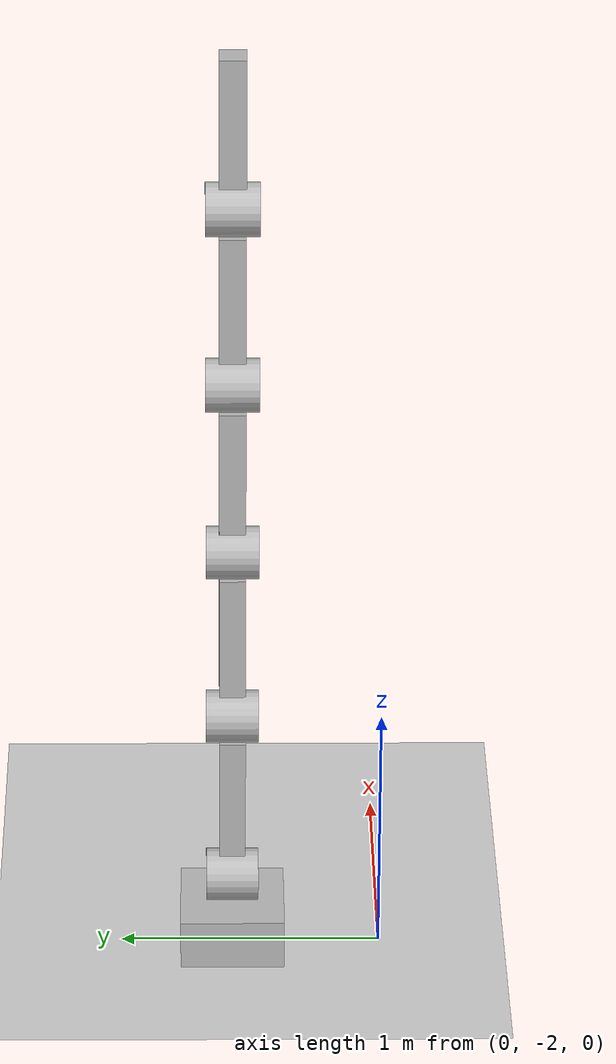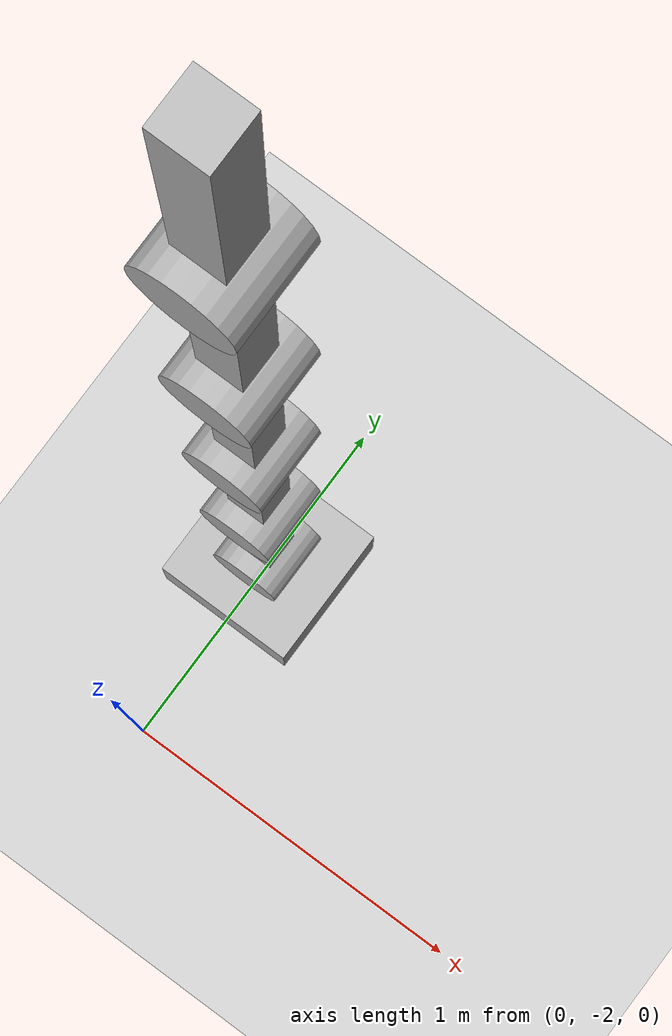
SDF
<sdf version="1.4">
 <world name="default">
  <light name="sun" type="directional">
   <pose>0 0 10 0 -0 0</pose>
   <diffuse>0.8 0.8 0.8 1</diffuse>
   <specular>0.2 0.2 0.2 1</specular>
   <attenuation>
    <range>1000</range>
    <constant>0.9</constant>
    <linear>0.01</linear>
    <quadratic>0.001</quadratic>
   </attenuation>
   <direction>-0.5 0.1 -0.9</direction>
  </light>
  <model name="ground_plane">
   <static>1</static>
   <link name="link">
    <collision name="collision">
     <geometry><plane><normal>0 0 1</normal><size>100 100</size></plane></geometry>
     <surface><friction><ode><mu>100</mu><mu2>50</mu2></ode></friction></surface>
    </collision>
    <visual name="visual">
     <cast_shadows>0</cast_shadows>
     <geometry><plane><normal>0 0 1</normal><size>100 100</size></plane></geometry>
     <material>
      <script><uri>file://media/materials/scripts/gazebo.material</uri><name>Gazebo/Grey</name></script>
     </material>
    </visual>
    <velocity_decay><linear>0</linear><angular>0</angular></velocity_decay>
   </link>
  </model>
  <physics type="ode">
   <max_step_size>0.001</max_step_size>
   <real_time_factor>1</real_time_factor>
   <real_time_update_rate>1000</real_time_update_rate>
   <gravity>0 0 -9.8</gravity>
  </physics>
  <scene><ambient>0.4 0.4 0.4 1</ambient><background>0.7 0.7 0.7 1</background><shadows>1</shadows></scene>
  <spherical_coordinates>
   <surface_model>EARTH_WGS84</surface_model>
   <latitude_deg>0</latitude_deg>
   <longitude_deg>0</longitude_deg>
   <elevation>0</elevation>
   <heading_deg>0</heading_deg>
  </spherical_coordinates>
  <model name="my_model">
   <static>0</static>
   <link name="base">
    <pose>0 0 0.1 0 -0 0</pose>
    <inertial>
     <inertia><ixx>0.01</ixx><ixy>0</ixy><ixz>0</ixz><iyy>0.01</iyy><iyz>0</iyz><izz>0.01</izz></inertia>
     <mass>10</mass>
    </inertial>
    <collision name="collision"><geometry><box><size>0.4 0.4 0.2</size></box></geometry></collision>
    <visual name="visual"><geometry><box><size>0.4 0.4 0.2</size></box></geometry></visual>
    <velocity_decay><linear>0</linear><angular>0</angular></velocity_decay>
   </link>
   <link name="joint1">
    <pose>0 0 0.3 0 1.5707 1.5707</pose>
    <collision name="collision">
     <geometry><cylinder><radius>0.1</radius><length>0.2</length></cylinder></geometry>
    </collision>
    <visual name="visual">
     <geometry><cylinder><radius>0.1</radius><length>0.2</length></cylinder></geometry>
    </visual>
    <velocity_decay><linear>0</linear><angular>0</angular></velocity_decay>
    <inertial>
     <inertia><ixx>1</ixx><ixy>0</ixy><ixz>0</ixz><iyy>1</iyy><iyz>0</iyz><izz>1</izz></inertia>
     <mass>1</mass>
    </inertial>
   </link>
   <link name="link">
    <pose>0 0 0.66 0 -0 0</pose>
    <inertial>
     <mass>0.25</mass>
     <inertia><ixx>0.083</ixx><ixy>0</ixy><ixz>0</ixz><iyy>0.083</iyy><iyz>0</iyz><izz>0.083</izz></inertia>
    </inertial>
    <collision name="collision"><geometry><box><size>0.1 0.1 0.5</size></box></geometry></collision>
    <visual name="visual"><geometry><box><size>0.1 0.1 0.5</size></box></geometry></visual>
    <velocity_decay><linear>0</linear><angular>0</angular></velocity_decay>
   </link>
   <link name="joint2">
    <pose>0 0 1.01 0 1.5707 1.5707</pose>
    <collision name="collision">
     <geometry><cylinder><radius>0.1</radius><length>0.2</length></cylinder></geometry>
    </collision>
    <visual name="visual">
     <geometry><cylinder><radius>0.1</radius><length>0.2</length></cylinder></geometry>
    </visual>
    <velocity_decay><linear>0</linear><angular>0</angular></velocity_decay>
    <inertial>
     <inertia><ixx>1</ixx><ixy>0</ixy><ixz>0</ixz><iyy>1</iyy><iyz>0</iyz><izz>1</izz></inertia>
     <mass>1</mass>
    </inertial>
   </link>
   <link name="link1">
    <pose>0 0 1.37 0 -0 0</pose>
    <inertial>
     <mass>0.2</mass>
     <inertia><ixx>0.083</ixx><ixy>0</ixy><ixz>0</ixz><iyy>0.083</iyy><iyz>0</iyz><izz>0.083</izz></inertia>
    </inertial>
    <collision name="collision1"><geometry><box><size>0.1 0.1 0.5</size></box></geometry></collision>
    <visual name="visual1"><geometry><box><size>0.1 0.1 0.5</size></box></geometry></visual>
    <velocity_decay><linear>0</linear><angular>0</angular></velocity_decay>
   </link>
   <link name="joint3">
    <pose>0 0 1.72 0 1.5707 1.5707</pose>
    <collision name="collision">
     <geometry><cylinder><radius>0.1</radius><length>0.2</length></cylinder></geometry>
    </collision>
    <visual name="visual">
     <geometry><cylinder><radius>0.1</radius><length>0.2</length></cylinder></geometry>
    </visual>
    <velocity_decay><linear>0</linear><angular>0</angular></velocity_decay>
    <inertial>
     <inertia><ixx>1</ixx><ixy>0</ixy><ixz>0</ixz><iyy>1</iyy><iyz>0</iyz><izz>1</izz></inertia>
     <mass>1</mass>
    </inertial>
   </link>
   <link name="link2">
    <pose>0 0 2.07 0 -0 0</pose>
    <inertial>
     <mass>0.2</mass>
     <inertia><ixx>0.083</ixx><ixy>0</ixy><ixz>0</ixz><iyy>0.083</iyy><iyz>0</iyz><izz>0.083</izz></inertia>
    </inertial>
    <collision name="collision2"><geometry><box><size>0.1 0.1 0.5</size></box></geometry></collision>
    <visual name="visual2"><geometry><box><size>0.1 0.1 0.5</size></box></geometry></visual>
    <velocity_decay><linear>0</linear><angular>0</angular></velocity_decay>
   </link>
   <link name="joint4">
    <pose>0 0 2.42 0 1.5707 1.5707</pose>
    <collision name="collision">
     <geometry><cylinder><radius>0.1</radius><length>0.2</length></cylinder></geometry>
    </collision>
    <visual name="visual">
     <geometry><cylinder><radius>0.1</radius><length>0.2</length></cylinder></geometry>
    </visual>
    <velocity_decay><linear>0</linear><angular>0</angular></velocity_decay>
    <inertial>
     <inertia><ixx>1</ixx><ixy>0</ixy><ixz>0</ixz><iyy>1</iyy><iyz>0</iyz><izz>1</izz></inertia>
     <mass>1</mass>
    </inertial>
   </link>
   <link name="link3">
    <pose>0 0 2.78 0 -0 0</pose>
    <inertial>
     <mass>0.2</mass>
     <inertia><ixx>0.083</ixx><ixy>0</ixy><ixz>0</ixz><iyy>0.083</iyy><iyz>0</iyz><izz>0.083</izz></inertia>
    </inertial>
    <collision name="collision3"><geometry><box><size>0.1 0.1 0.5</size></box></geometry></collision>
    <visual name="visual3"><geometry><box><size>0.1 0.1 0.5</size></box></geometry></visual>
    <velocity_decay><linear>0</linear><angular>0</angular></velocity_decay>
   </link>
   <link name="joint5">
    <pose>0 0 3.13 0 1.5707 1.5707</pose>
    <collision name="collision">
     <geometry><cylinder><radius>0.1</radius><length>0.2</length></cylinder></geometry>
    </collision>
    <visual name="visual">
     <geometry><cylinder><radius>0.1</radius><length>0.2</length></cylinder></geometry>
    </visual>
    <velocity_decay><linear>0</linear><angular>0</angular></velocity_decay>
    <inertial>
     <inertia><ixx>1</ixx><ixy>0</ixy><ixz>0</ixz><iyy>1</iyy><iyz>0</iyz><izz>1</izz></inertia>
     <mass>1</mass>
    </inertial>
   </link>
   <link name="link4">
    <pose>0 0 3.48 0 -0 0</pose>
    <inertial>
     <mass>0.2</mass>
     <inertia><ixx>0.083</ixx><ixy>0</ixy><ixz>0</ixz><iyy>0.083</iyy><iyz>0</iyz><izz>0.083</izz></inertia>
    </inertial>
    <collision name="collision4"><geometry><box><size>0.1 0.1 0.5</size></box></geometry></collision>
    <visual name="visual4"><geometry><box><size>0.1 0.1 0.5</size></box></geometry></visual>
    <velocity_decay><linear>0</linear><angular>0</angular></velocity_decay>
   </link>
   <joint name="base" type="revolute">
    <child>base</child>
    <parent>world</parent>
    <axis><limit><lower>0</lower><upper>0</upper></limit><xyz>1 0 0</xyz></axis>
   </joint>
   <joint name="joint1" type="revolute">
    <child>joint1</child>
    <parent>base</parent>
    <axis><limit><lower>-0.5</lower><upper>0.5</upper></limit><xyz>0 1 0</xyz></axis>
   </joint>
   <joint name="link-join1" type="revolute">
    <pose>0 0 -0.05 0 -0 0</pose>
    <child>link</child>
    <parent>joint1</parent>
    <axis><limit><lower>0</lower><upper>0</upper></limit><xyz>0 1 0</xyz></axis>
   </joint>
   <joint name="joint2" type="revolute">
    <pose>0 0 -0.05 0 -0 0</pose>
    <child>joint2</child>
    <parent>link</parent>
    <axis><limit><lower>-1</lower><upper>1</upper></limit><xyz>0 1 0</xyz></axis>
   </joint>
   <joint name="link1-joint2" type="revolute">
    <pose>0 0 -0.05 0 -0 0</pose>
    <child>link1</child>
    <parent>joint2</parent>
    <axis><limit><lower>0</lower><upper>0</upper></limit><xyz>0 1 0</xyz></axis>
   </joint>
   <joint name="joint3" type="revolute">
    <pose>0 0 -0.05 0 -0 0</pose>
    <child>joint3</child>
    <parent>link1</parent>
    <axis><limit><lower>-0.5</lower><upper>0.5</upper></limit><xyz>0 1 0</xyz></axis>
   </joint>
   <joint name="link2-joint3" type="revolute">
    <pose>0 0 -0.05 0 -0 0</pose>
    <child>link2</child>
    <parent>joint3</parent>
    <axis><limit><lower>0</lower><upper>0</upper></limit><xyz>0 1 0</xyz></axis>
   </joint>
   <joint name="joint4" type="revolute">
    <pose>0 0 -0.05 0 -0 0</pose>
    <child>joint4</child>
    <parent>link2</parent>
    <axis><limit><lower>0</lower><upper>0</upper></limit><xyz>0 1 0</xyz></axis>
   </joint>
   <joint name="link3-joint4" type="revolute">
    <pose>0 0 -0.05 0 -0 0</pose>
    <child>link3</child>
    <parent>joint4</parent>
    <axis><limit><lower>0</lower><upper>0</upper></limit><xyz>0 1 0</xyz></axis>
   </joint>
   <joint name="joint5" type="revolute">
    <pose>0 0 -0.05 0 -0 0</pose>
    <child>joint5</child>
    <parent>link3</parent>
    <axis><limit><lower>0</lower><upper>0</upper></limit><xyz>0 1 0</xyz></axis>
   </joint>
   <joint name="link4-joint5" type="revolute">
    <pose>0 0 -0.05 0 -0 0</pose>
    <child>link4</child>
    <parent>joint5</parent>
    <axis><limit><lower>0</lower><upper>0</upper></limit><xyz>0 1 0</xyz></axis>
   </joint>
   <plugin name="hello_world" filename="libhello_world.so"/>
   <pose>2e-06 -1.43032 1e-06 -2e-06 -1.3e-05 3.23117e-27</pose>
  </model>
 </world>
</sdf>
